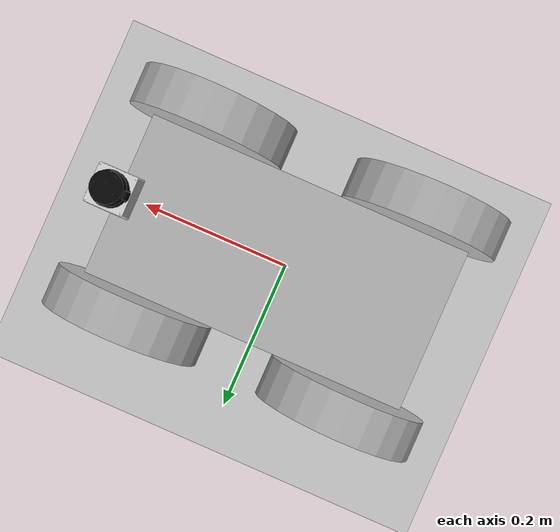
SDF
<sdf version="1.6">
 <world name="myworld">
  <light name="sun" type="directional">
   <pose>0 0 10 0 -0 0</pose>
   <diffuse>0.8 0.8 0.8 1</diffuse>
   <specular>0.1 0.1 0.1 1</specular>
   <attenuation>
    <range>1000</range>
    <constant>0.9</constant>
    <linear>0.01</linear>
    <quadratic>0.001</quadratic>
   </attenuation>
   <direction>-0.5 0.5 -1</direction>
  </light>
  <model name="ground_plane">
   <static>1</static>
   <link name="link">
    <collision name="collision">
     <geometry><plane><normal>0 0 1</normal><size>100 100</size></plane></geometry>
     <surface><friction><ode><mu>100</mu><mu2>50</mu2></ode></friction></surface>
    </collision>
    <visual name="visual">
     <cast_shadows>0</cast_shadows>
     <geometry><plane><normal>0 0 1</normal><size>100 100</size></plane></geometry>
     <material>
      <script><uri>file://media/materials/scripts/gazebo.material</uri><name>Gazebo/Grey</name></script>
     </material>
    </visual>
   </link>
  </model>
  <model name="mybot">
   <pose>0.011969 3.3e-05 2e-06 -3e-06 -0 3e-06</pose>
   <static>0</static>
   <link name="chassis">
    <pose>0 0 0.1 0 -0 0</pose>
    <collision name="collision"><geometry><box><size>0.4 0.2 0.1</size></box></geometry></collision>
    <visual name="visual"><geometry><box><size>0.4 0.2 0.1</size></box></geometry></visual>
    <inertial>
     <inertia><ixx>1</ixx><ixy>0</ixy><ixz>0</ixz><iyy>1</iyy><iyz>0</iyz><izz>1</izz></inertia>
     <mass>1</mass>
    </inertial>
   </link>
   <link name="right_front_wheel">
    <pose>0.14 -0.13 0.1 -0 1.5707 1.5707</pose>
    <collision name="collision">
     <geometry><cylinder><radius>0.1</radius><length>0.05</length></cylinder></geometry>
    </collision>
    <visual name="visual">
     <geometry><cylinder><radius>0.1</radius><length>0.05</length></cylinder></geometry>
    </visual>
    <inertial>
     <inertia><ixx>1</ixx><ixy>0</ixy><ixz>0</ixz><iyy>1</iyy><iyz>0</iyz><izz>1</izz></inertia>
     <mass>1</mass>
    </inertial>
   </link>
   <link name="left_front_wheel">
    <pose>0.14 0.13 0.1 -0 1.5707 1.5707</pose>
    <collision name="collision">
     <geometry><cylinder><radius>0.1</radius><length>0.05</length></cylinder></geometry>
    </collision>
    <visual name="visual">
     <geometry><cylinder><radius>0.1</radius><length>0.05</length></cylinder></geometry>
    </visual>
    <inertial>
     <inertia><ixx>1</ixx><ixy>0</ixy><ixz>0</ixz><iyy>1</iyy><iyz>0</iyz><izz>1</izz></inertia>
     <mass>1</mass>
    </inertial>
   </link>
   <link name="left_back_wheel">
    <pose>-0.14 0.13 0.1 -0 1.5707 1.5707</pose>
    <collision name="collision">
     <geometry><cylinder><radius>0.1</radius><length>0.05</length></cylinder></geometry>
    </collision>
    <visual name="visual">
     <geometry><cylinder><radius>0.1</radius><length>0.05</length></cylinder></geometry>
    </visual>
    <inertial>
     <inertia><ixx>1</ixx><ixy>0</ixy><ixz>0</ixz><iyy>1</iyy><iyz>0</iyz><izz>1</izz></inertia>
     <mass>1</mass>
    </inertial>
   </link>
   <link name="right_back_wheel">
    <pose>-0.14 -0.13 0.1 -0 1.5707 1.5707</pose>
    <collision name="collision">
     <geometry><cylinder><radius>0.1</radius><length>0.05</length></cylinder></geometry>
    </collision>
    <visual name="visual">
     <geometry><cylinder><radius>0.1</radius><length>0.05</length></cylinder></geometry>
    </visual>
    <inertial>
     <inertia><ixx>1</ixx><ixy>0</ixy><ixz>0</ixz><iyy>1</iyy><iyz>0</iyz><izz>1</izz></inertia>
     <mass>1</mass>
    </inertial>
   </link>
   <joint name="left_back_wheel_joint" type="revolute">
    <pose>0 0 -0.03 0 -0 0</pose>
    <child>left_back_wheel</child>
    <parent>chassis</parent>
    <axis>
     <xyz>0 1 0</xyz>
     <use_parent_model_frame>1</use_parent_model_frame>
     <limit><lower>-1e+16</lower><upper>1e+16</upper></limit>
     <dynamics><spring_reference>0</spring_reference><spring_stiffness>0</spring_stiffness></dynamics>
    </axis>
   </joint>
   <joint name="right_back_wheel_joint" type="revolute">
    <pose>0 0 0.03 0 -0 0</pose>
    <child>right_back_wheel</child>
    <parent>chassis</parent>
    <axis>
     <xyz>0 1 0</xyz>
     <use_parent_model_frame>1</use_parent_model_frame>
     <limit><lower>-1e+16</lower><upper>1e+16</upper></limit>
     <dynamics><spring_reference>0</spring_reference><spring_stiffness>0</spring_stiffness></dynamics>
    </axis>
   </joint>
   <joint name="left_front_wheel_joint" type="revolute">
    <pose>0 0 -0.03 0 -0 0</pose>
    <child>left_front_wheel</child>
    <parent>chassis</parent>
    <axis>
     <xyz>0 1 0</xyz>
     <use_parent_model_frame>1</use_parent_model_frame>
     <limit><lower>-1e+16</lower><upper>1e+16</upper></limit>
     <dynamics><spring_reference>0</spring_reference><spring_stiffness>0</spring_stiffness></dynamics>
    </axis>
   </joint>
   <joint name="right_front_wheel_joint" type="revolute">
    <pose>0 0 0.03 0 -0 0</pose>
    <child>right_front_wheel</child>
    <parent>chassis</parent>
    <axis>
     <xyz>0 1 0</xyz>
     <use_parent_model_frame>1</use_parent_model_frame>
     <limit><lower>-1e+16</lower><upper>1e+16</upper></limit>
     <dynamics><spring_reference>0</spring_reference><spring_stiffness>0</spring_stiffness></dynamics>
    </axis>
   </joint>
   <link name="hokuyo::link">
    <gravity>0</gravity>
    <inertial>
     <mass>0.1</mass>
     <inertia><ixx>1</ixx><ixy>0</ixy><ixz>0</ixz><iyy>1</iyy><iyz>0</iyz><izz>1</izz></inertia>
    </inertial>
    <visual name="visual">
     <geometry><mesh><uri>model://hokuyo/meshes/hokuyo.dae</uri><scale>1 1 1</scale></mesh></geometry>
    </visual>
    <sensor name="laser" type="ray">
     <pose>0.01 0 0.03 0 -0 0</pose>
     <ray>
      <scan>
       <horizontal>
        <samples>640</samples>
        <resolution>1</resolution>
        <min_angle>-2.26889</min_angle>
        <max_angle>2.2689</max_angle>
       </horizontal>
       <vertical><samples>1</samples><min_angle>0</min_angle><max_angle>0</max_angle></vertical>
      </scan>
      <range><min>0.08</min><max>10</max><resolution>0.01</resolution></range>
     </ray>
     <plugin name="laser" filename="libRayPlugin.so"/>
     <always_on>1</always_on>
     <update_rate>30</update_rate>
     <visualize>1</visualize>
    </sensor>
    <pose>0.2 0 0.2 0 -0 0</pose>
   </link>
   <joint name="hokuyo_joint" type="fixed"><child>hokuyo::link</child><parent>chassis</parent></joint>
   <plugin name="differential_drive_controller" filename="libgazebo_ros_diff_drive.so">
    <alwaysOn>true</alwaysOn>
    <updateRate>100</updateRate>
    <leftJoint>left_back_wheel_joint</leftJoint>
    <rightJoint>right_back_wheel_joint</rightJoint>
    <wheelSeparation>0.39</wheelSeparation>
    <wheelDiameter>0.15</wheelDiameter>
    <torque>5</torque>
    <commandTopic>cmd_vel</commandTopic>
    <odometryTopic>odom</odometryTopic>
    <odometryFrame>odom</odometryFrame>
    <robotBaseFrame>chassis</robotBaseFrame>
    <rosDebugLevel>1</rosDebugLevel>
    <publishWheelTF>true</publishWheelTF>
    <publishWheelJointState>true</publishWheelJointState>
    <wheelAcceleration>0</wheelAcceleration>
    <wheelTorque>1</wheelTorque>
    <odometrySource>1</odometrySource>
    <publishTf>1</publishTf>
    <legacyMode>true</legacyMode>
   </plugin>
  </model>
  <gravity>0 0 -9.8</gravity>
  <magnetic_field>6e-06 2.3e-05 -4.2e-05</magnetic_field>
  <atmosphere type="adiabatic"/>
  <physics name="default_physics" default="0" type="ode">
   <max_step_size>0.001</max_step_size>
   <real_time_factor>1</real_time_factor>
   <real_time_update_rate>1000</real_time_update_rate>
  </physics>
  <scene><ambient>0.4 0.4 0.4 1</ambient><background>0.7 0.7 0.7 1</background><shadows>1</shadows></scene>
  <spherical_coordinates>
   <surface_model>EARTH_WGS84</surface_model>
   <latitude_deg>0</latitude_deg>
   <longitude_deg>0</longitude_deg>
   <elevation>0</elevation>
   <heading_deg>0</heading_deg>
  </spherical_coordinates>
 </world>
</sdf>
